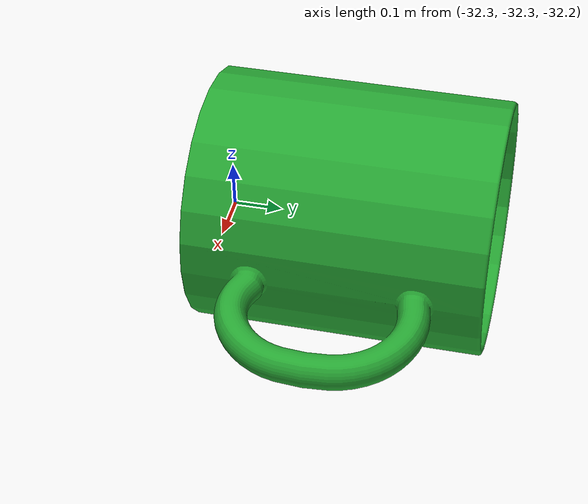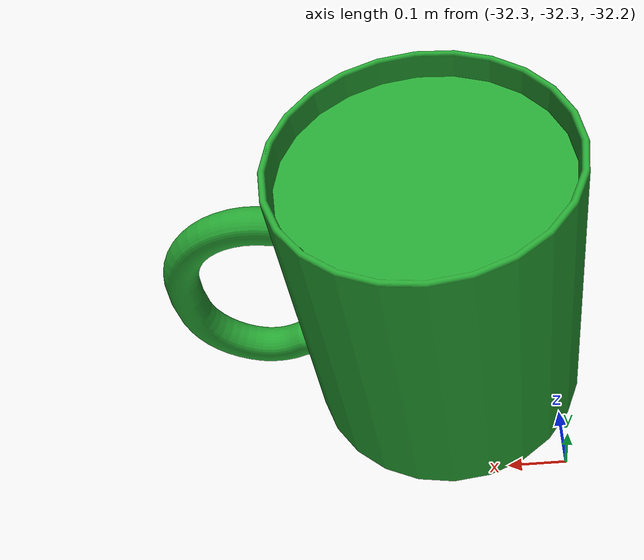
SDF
<?xml version='1.0'?>
<sdf version="1.6">

         <model name="mesh">
             <static>0</static>
             <self_collide>0</self_collide>
             <allow_auto_disable>1</allow_auto_disable>

             <frame name="object_frame">
                 <pose frame="/world">0 0 0 0 -0 0 </pose>
             </frame>

             <pose frame="/world">0 0 0 0 -0 0</pose>

             <link name="link">

                 <gravity>1</gravity>
                 <self_collide>0</self_collide>
                 <kinematic>0</kinematic>

                 <frame name="link_frame">
                     <pose frame="object_frame">0 0 0 0 -0 0</pose>
                 </frame>

                 <!-- red green blue offsets: model pivot point -->
                 <!-- 32 is just half of the voxelgrid dimension (64)-->
                 <pose name="link_frame">-32 -32 -32 0 -0 0</pose>

                 <inertial>
                     <mass>0.0</mass>
                     <inertia>
                         <!-- http://gazebosim.org/tutorials?tut=inertia&cat=build_robot -->
                         <ixx>-0.08934</ixx>
                         <ixy>-0.01335</ixy>
                         <ixz>-0.00329</ixz>
                         <iyy>-0.00538</iyy>
                         <iyz>0.01664</iyz>
                         <izz>-0.08903</izz>
                     </inertia>

                     <frame name="link_inertia_frame">
                         <pose frame="link_frame">0 0 0 0 -0 0</pose>
                     </frame>

                     <pose frame="link_inertia_frame">0.62 -4.13 -0.77 0 0 0                     </pose>
                 </inertial>

                 <collision name="collision">
                     <!--
                         Maximum number of contacts allowed between two entities.
                         This value overrides the max_contacts element defined in physics.
                     -->
                     <max_contacts>20</max_contacts>

                     <!-- A frame of reference to which a pose is relative. -->
                     <frame name="collision_frame">
                         <pose frame="link_frame">0 0 0 0 -0 0</pose>
                     </frame>
                     <!-- A position(x,y,z) and orientation(roll, pitch yaw) with respect to the specified frame. -->
                     <pose frame="collision_frame">0 0 0 0 -0 0</pose>

                     <geometry>
                         <mesh>
                             <uri>/home/chathushka/Documents/hand_prosthesis_ws/src/hand_prosthesis_rl_control_pkgs/assets/shapenet_sdf/category_3/obj_64/mesh.stl</uri>
                             <!-- Scaling factor applied to the mesh -->
                             <scale>1.0 1.0 1.0</scale>
                         </mesh>
                     </geometry>
                     <!-- http://sdformat.org/spec?ver=1.6&elem=collision#surface_soft_contact -->
                     <surface></surface>
                 </collision>

                 <visual name="visual">
                     <cast_shadows>1</cast_shadows>
                     <transparency>0</transparency>

                     <frame name="visual_frame">
                         <pose frame="link_frame">0 0 0 0 -0 0</pose>
                     </frame>
                     <pose frame="visual_frame">0 0 0 0 -0 0</pose>

                     <material>

                         <script>
                             <uri>file://media/materials/scripts/gazebo.material</uri>
                             <name>Gazebo/Green</name>
                         </script>
                         <shader type="vertex">
                           <normal_map>__default__</normal_map>
                         </shader>

                         <lighting>1</lighting>
 		                <ambient>0.15 0.75 0.35 1</ambient>
 		                <diffuse>0.1 0.95 0.25 1</diffuse>
 		                <specular>0.01 0.01 0.01 1</specular>
 		                <emissive>0 0 0 1</emissive>
                     </material>

                     <geometry>
                         <mesh>
                             <uri>/home/chathushka/Documents/hand_prosthesis_ws/src/hand_prosthesis_rl_control_pkgs/assets/shapenet_sdf/category_3/obj_64/mesh.stl</uri>
                             <!-- Scaling factor applied to the mesh -->
                             <scale>1.0 1.0 1.0</scale>
                         </mesh>
                     </geometry>
                 </visual>
             </link>
         </model>
     </sdf>
